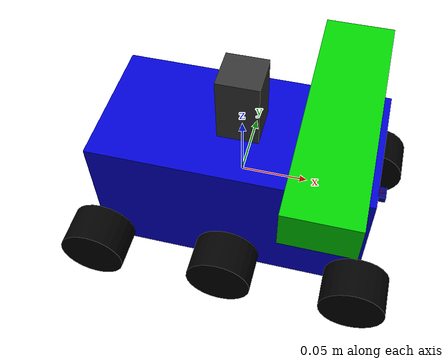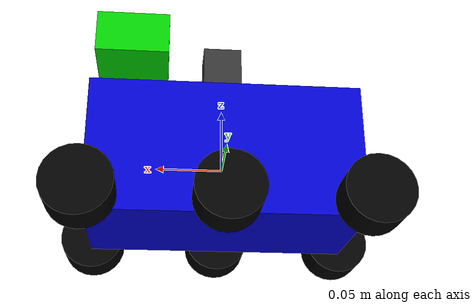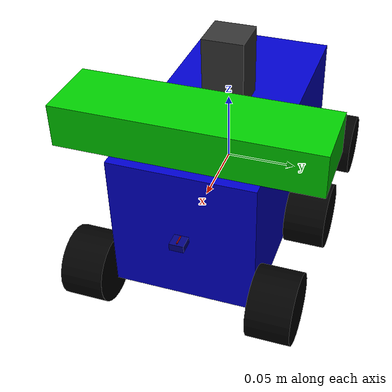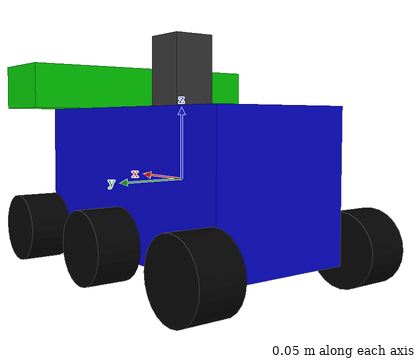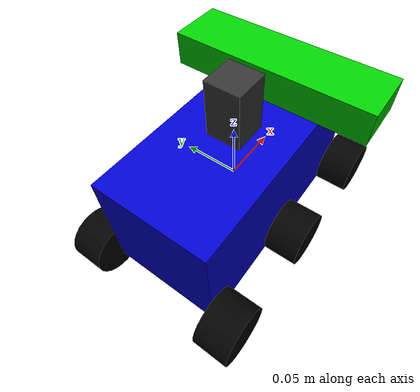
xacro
<?xml version="1.0"?>
<robot name="mbot" xmlns:xacro="http://www.ros.org/wiki/xacro">

	<link name ="base_link">
		<visual>
			<geometry>
				<box size = "0.2 0.1 0.1"/>
			</geometry>
			<material name ="blue">
				<color rgba="0.0 0.0 0.8 1.0"/>
			</material>
		</visual>
		<collision>
			<geometry>
				<box size = "0.2 0.1 0.1"/>
			</geometry>
		</collision>
		<inertial>
			<mass value="1.6"/>
			<inertia ixx="0.00667" ixy="0.0" ixz="0.0" iyy="0.00667" iyz="0.0" izz="0.00267"/>
		</inertial>
	</link>
	<gazebo reference="base_link">
		<material>Gazebo/Blue</material>
	</gazebo>

	<xacro:macro name="wheel_tran" params="prefix suffix">
		<transmission name="tran_${prefix}_${suffix}">
    		<type>transmission_interface/SimpleTransmission</type>
    		<joint name="base_to_wheel_${prefix}_${suffix}">
      			<hardwareInterface>hardware_interface/VelocityJointInterface</hardwareInterface>
    		</joint>
			<actuator name="motor_${prefix}_${suffix}">
      			<mechanicalReduction>1</mechanicalReduction>
    		</actuator>
  		</transmission>
	</xacro:macro>

	<xacro:macro name="wheel_link" params="prefix suffix xreflect yreflect friction">
		<link name="wheel_${prefix}_${suffix}">
			<visual>
				<geometry>
					<cylinder length="0.03" radius="0.0245"/>
				</geometry>
				<origin rpy="1.57075 0 0" xyz="0 0 0"/>
				<material name="black">
					<color rgba="0.0 0.0 0.0 1.0"/>
				</material>
			</visual>
			<collision>
				<geometry>
					<cylinder length="0.03" radius="0.0245"/>
				</geometry>
				<origin rpy="1.57075 0 0" xyz="0 0 0"/>
			</collision>
			<inertial>
				<mass value="0.01"/>
				<inertia ixx="0.00000225" ixy="0.0" ixz="0.0" iyy="0.000003" iyz="0.0" izz="0.00000225"/>
			</inertial>
		</link>
		<joint name="base_to_wheel_${prefix}_${suffix}" type="continuous">
			<axis rpy="0 0 0" xyz="0 1 0"/>
			<parent link="base_link"/>
			<child link="wheel_${prefix}_${suffix}"/>
			<origin rpy="0 0 0" xyz="${xreflect*0.1} ${yreflect*0.065} -0.04"/>
		</joint>
		<gazebo reference="wheel_${prefix}_${suffix}">
			<mu1 value="${friction*100000.0}"/>
        	<mu2 value="${friction*100000.0}"/>
        	<material>Gazebo/Black</material>
		</gazebo>
		<xacro:wheel_tran prefix="${prefix}" suffix="${suffix}"/>

	</xacro:macro>

	<xacro:wheel_link prefix="front" suffix="left" xreflect="1.0" yreflect="1.0" friction="0"/>
	<xacro:wheel_link prefix="front" suffix="right" xreflect="1.0" yreflect="-1.0" friction="0"/>
	<xacro:wheel_link prefix="rear" suffix="left" xreflect="-1.0" yreflect="1.0" friction="0"/>
	<xacro:wheel_link prefix="rear" suffix="right" xreflect="-1.0" yreflect="-1.0" friction="0"/>
	<xacro:wheel_link prefix="center" suffix="left" xreflect="0" yreflect="1.0" friction="1.0"/>
	<xacro:wheel_link prefix="center" suffix="right" xreflect="0" yreflect="-1.0" friction="1.0"/>

    <link name="imu_link">
        <visual>
            <geometry>
                <box size="0.001 0.001 0.0001"/>
            </geometry>
            <material name="grey">
				<color rgba="0.2 0.2 0.2 1.0"/>
			</material>
        </visual>
		<collision>
			<geometry>
                <box size="0.001 0.001 0.0001"/>
            </geometry>
		</collision>
		<inertial>
			<mass value="0.01"/>
			<inertia ixx="0.000001" ixy="0.0" ixz="0.0" iyy="0.000001" iyz="0.0" izz="0.0000001"/>
		</inertial>
    </link>
    <joint name="base_to_imu" type="fixed">
		<axis rpy="0 0 0" xyz="0 0 1"/>
        <parent link="base_link"/>
        <child link="imu_link"/>
        <origin rpy="0 0 0" xyz="0 0 0.05"/>
    </joint>
	<gazebo reference="imu_link">
		<gravity>true</gravity>
		<material>Gazebo/Grey</material>
		<sensor name="imu_sensor" type="imu">
			<always_on>true</always_on>
			<update_rate>100</update_rate>
			<visualize>true</visualize>
			<topic>imu</topic>
			<plugin filename="libgazebo_ros_imu_sensor.so" name="imu_plugin">
				<topicName>imu</topicName>
				<bodyName>imu</bodyName>
				<updateRateHZ>10.0</updateRateHZ>
				<gaussianNoise>0.0</gaussianNoise>
				<xyzOffset>0 0 0</xyzOffset>
				<rpyOffset>0 0 0</rpyOffset>
				<frameName>imu_link</frameName>
			</plugin>
			<pose>0 0 0 0 0 0</pose>
		</sensor>
	</gazebo>

    <link name="xtion_link">
        <visual>
            <geometry>
                <box size="0.05 0.18 0.03"/>
            </geometry>
			<material name="green">
				<color rgba="0.0 0.8 0.0 1.0"/>
			</material>
        </visual>
		<collision>
			<geometry>
                <box size="0.05 0.18 0.03"/>
            </geometry>
		</collision>
		<inertial>
			<mass value="0.1"/>
			<inertia ixx="0.0000283" ixy="0.0" ixz="0.0" iyy="0.0002775" iyz="0.0" izz="0.00029"/>
		</inertial>
    </link>
    <joint name="base_to_xtion" type="fixed">
		<axis rpy="0 0 0" xyz="0 0 1"/>
        <parent link="base_link"/>
        <child link="xtion_link"/>
        <origin rpy="0 0 0" xyz="0.068 0 0.065"/>
    </joint>
	<gazebo reference="xtion_link">
		<material>Gazebo/Green</material>
		<sensor type="depth" name="xtion">
			<pose>0 0 0 0 0 0</pose>
			<always_on>true</always_on>
			<visualize>true</visualize>
			<camera>
				<horizontal_fov>1.02974</horizontal_fov>
				<image>
					<width>640</width>
					<height>480</height>
					<format>R8G8B8</format>
				</image>
				<depth_camera></depth_camera>
				<clip>
					<near>0.02</near>
					<far>300</far>
				</clip>
			</camera>
			<plugin name="$xtion_link_controller" filename="libgazebo_ros_openni_kinect.so">
				<baseline>0.2</baseline>
				<alwaysOn>true</alwaysOn>
				<updateRate>30.0</updateRate>
				<cameraName>camera</cameraName>
				<imageTopicName>/camera/rgb/image_raw</imageTopicName>
				<cameraInfoTopicName>/camera/rgb/camera_info</cameraInfoTopicName>
				<depthImageTopicName>/camera/depth/image_raw</depthImageTopicName>
				<depthImageInfoTopicName>/camera/depth/camera_info</depthImageInfoTopicName>
				<pointCloudTopicName>/camera/depth/points</pointCloudTopicName>
				<frameName>xtion_link</frameName>
				<pointCloudCutoff>0.5</pointCloudCutoff>
				<distortionK1>0.00000001</distortionK1>
				<distortionK2>0.00000001</distortionK2>
				<distortionK3>0.00000001</distortionK3>
				<distortionT1>0.00000001</distortionT1>
				<distortionT2>0.00000001</distortionT2>
				<CxPrime>0</CxPrime>
				<Cx>0</Cx>
				<Cy>0</Cy>
				<focalLength>0</focalLength>
				<hackBaseline>0</hackBaseline>
			</plugin>
		</sensor>
	</gazebo>

	<link name="laser_link">
		<visual>
			<origin xyz="0 0 -0.015" rpy="0 0 0"/>
			<geometry>
				<box size="0.03 0.03 0.05"/>
			</geometry>
			<material name="grey">
				<color rgba="0.2 0.2 0.2 1"/>
			</material>
		</visual>
		<collision>
			<origin xyz="0 0 -0.015" rpy="0 0 0"/>
			<geometry>
				<box size="0.02 0.02 0.05"/>
			</geometry>
		</collision>
		<inertial>
			<origin xyz="0 0 0.04" rpy="0 0 0"/>
			<mass value="0.01"/>
			<inertia ixx="0.000001" ixy="0.0" ixz="0.0" iyy="0.000001" iyz="0.0" izz="0.0000001"/>
		</inertial>
	</link>
	<joint name="base_to_laser" type="fixed">
		<axis rpy="0 0 0" xyz="0 0 1"/>
		<parent link="base_link"/>
		<child link="laser_link"/>
		<origin rpy="0 0 0" xyz="0 0 0.09"/>
	</joint>
	<gazebo reference="laser_link">
		<sensor type="gpu_ray" name="head_hokuyo_sensor">
			<pose>0 0 0 0 0 0</pose>
			<visualize>0</visualize>
			<update_rate>40</update_rate>
			<ray>
				<scan>
					<horizontal>
						<samples>270</samples>
						<resolution>1</resolution>
						<min_angle>-2.356194</min_angle>
						<max_angle>2.356194</max_angle>
					</horizontal>
				</scan>
				<range>
					<min>0.10</min>
					<max>30.0</max>
					<resolution>0.01</resolution>
				</range>
				<noise>
					<type>gaussian</type>
					<mean>0.0</mean>
					<stddev>0.01</stddev>
				</noise>
			</ray>
			<plugin name="gazebo_ros_head_hokuyo_controller" filename="libgazebo_ros_gpu_laser.so">
				<topicName>/mbot/laser/scan</topicName>
				<frameName>laser_link</frameName>
			</plugin>
		</sensor>
  	</gazebo>

	<link name="pointer_base">
		<visual>
			<geometry>
				<box size="0.01 0.01 0.005"/>
			</geometry>
			<material name="blue2">
				<color rgba="0.0 0.0 0.5 1.0"/>
			</material>
		</visual>
		<collision>
			<geometry>
				<box size="0.01 0.01 0.005"/>
			</geometry>
		</collision>
		<inertial>
			<mass value="0.01"/>
			<inertia ixx="0.000001" ixy="0.0" ixz="0.0" iyy="0.000001" iyz="0.0" izz="0.0000001"/>
		</inertial>
	</link>
	<joint name="base_to_pointer_mount" type="fixed">
		<axis rpy="0 0 0" xyz="1 0 0"/>
		<parent link="base_link"/>
		<child link="pointer_base"/>
		<origin rpy="0 0 0" xyz="0.105 0 0"/>
	</joint>
	<gazebo reference="pointer_base">
		<material>Gazebo/Grey</material>
	</gazebo>

	<link name="pointer_link">
		<visual>
			<geometry>
				<cylinder length="0.007" radius="0.0005"/>
			</geometry>
			<origin xyz="0 0 0" rpy="0 1.57075 0"/>
			<material name="red">
				<color rgba="0.6 0 0 1.0"/>
			</material>
		</visual>
		<collision>
			<geometry>
				<cylinder length="0.007" radius="0.0005"/>
			</geometry>
			<origin xyz="0 0 0" rpy="0 1.57075 0"/>
		</collision>
		<inertial>
			<mass value="0.001"/>
			<inertia ixx="0.000001" ixy="0.0" ixz="0.0" iyy="0.000001" iyz="0.0" izz="0.0000001"/>
		</inertial>
	</link>
	<gazebo reference="pointer_link">
		<material>Gazebo/Red</material>
		<sensor type="gpu_ray" name="pointer">
			<pose>0 0 0 0 0 0</pose>
			<visualize>false</visualize>
			<update_rate>40</update_rate>
			<ray>
				<scan>
					<horizontal>
						<samples>3</samples>
						<resolution>1</resolution>
						<min_angle>-0.017453</min_angle>
						<max_angle>0.017453</max_angle>
					</horizontal>
				</scan>
				<range>
					<min>0.10</min>
					<max>30.0</max>
					<resolution>0.01</resolution>
				</range>
				<noise>
					<type>gaussian</type>
					<mean>0.0</mean>
					<stddev>0.01</stddev>
				</noise>
			</ray>
			<plugin name="gazebo_ros_head_hokuyo_controller" filename="libgazebo_ros_gpu_laser.so">
				<topicName>/mbot/pointer/scan</topicName>
				<frameName>pinter_link</frameName>
			</plugin>
		</sensor>
	</gazebo>
	<joint name="mount_to_pointer" type="continuous">
		<axis rpy="0 0 0" xyz="0 0 1"/>
		<parent link="pointer_base"/>
		<child link="pointer_link"/>
		<origin xyz="0 0 0.003" rpy="0 0 0"/>
	</joint>
	<transmission name="pointer_servo">
		<type>transmission_interface/SimpleTransmission</type>
		<joint name="mount_to_pointer">
			<hardwareInterface>hardware_interface/EffortJointInterface</hardwareInterface>
		</joint>
		<actuator name="pointer_motor">
			<mechanicalReduction>1</mechanicalReduction>
		</actuator>
	</transmission>

	<gazebo>
        <plugin name="gazebo_ros_control" filename="libgazebo_ros_control.so">
            <robotNamespace>/</robotNamespace>
            <robotSimType>gazebo_ros_control/DefaultRobotHWSim</robotSimType>
        </plugin>
    </gazebo>

</robot>
